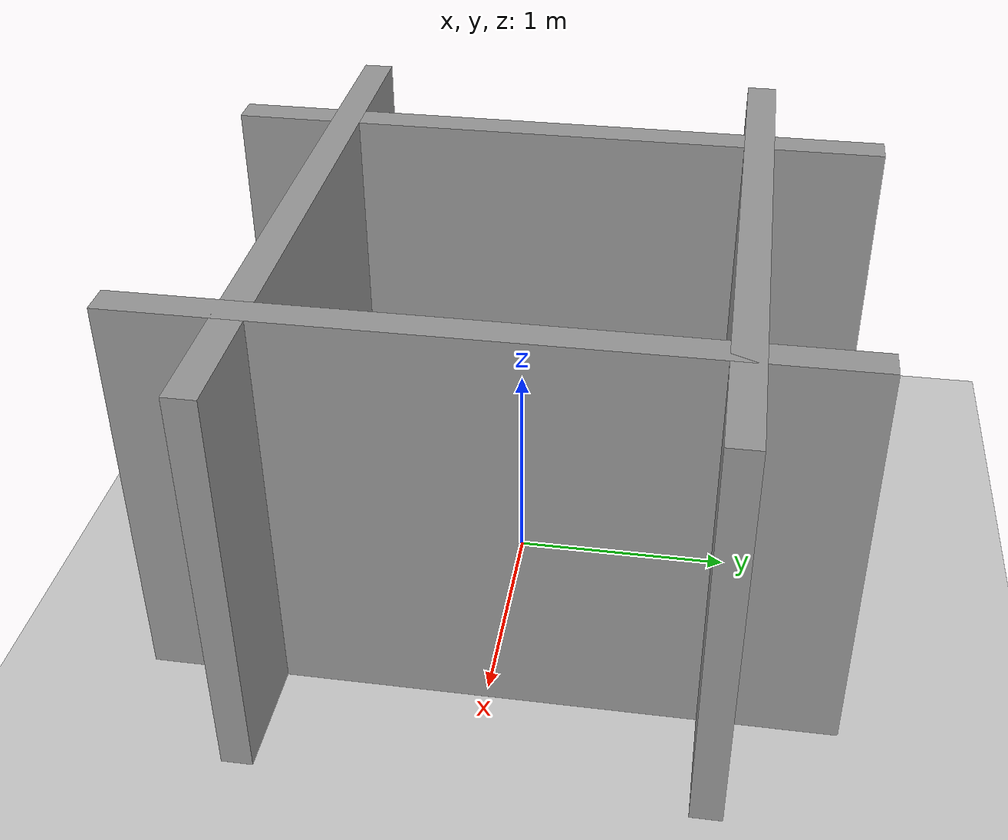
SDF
<sdf version="1.7">
 <world name="default">
  <light name="sun" type="directional">
   <pose>0 0 10 0 -0 0</pose>
   <diffuse>0.8 0.8 0.8 1</diffuse>
   <specular>0.2 0.2 0.2 1</specular>
   <attenuation>
    <range>1000</range>
    <constant>0.9</constant>
    <linear>0.01</linear>
    <quadratic>0.001</quadratic>
   </attenuation>
   <direction>-0.5 0.1 -0.9</direction>
   <spot><inner_angle>0</inner_angle><outer_angle>0</outer_angle><falloff>0</falloff></spot>
  </light>
  <physics name="ode" type="ode">
   <ode>
    <constraints>
     <contact_max_correcting_vel>0</contact_max_correcting_vel>
     <cfm>0</cfm>
     <erp>0.2</erp>
     <contact_surface_layer>0.001</contact_surface_layer>
    </constraints>
    <solver>
     <type>quick</type>
     <iters>50</iters>
     <sor>1.3</sor>
     <use_dynamic_moi_rescaling>0</use_dynamic_moi_rescaling>
    </solver>
   </ode>
   <max_step_size>0.001</max_step_size>
   <real_time_update_rate>1000</real_time_update_rate>
   <real_time_factor>1</real_time_factor>
  </physics>
  <plugin name="stepping_plugin" filename="libstepping_plugin.so"/>
  <model name="moveit_plugin_model">
   <plugin name="gazebo_ros_moveit_planning_scene" filename="libgazebo_ros_moveit_planning_scene.so">
    <robotName>hdt_michigan</robotName>
    <robotNamespace>hdt_michigan</robotNamespace>
    <frameId>hdt_michigan_root</frameId>
   </plugin>
  </model>
  <model name="ground_plane">
   <static>1</static>
   <link name="link">
    <collision name="collision">
     <geometry><plane><normal>0 0 1</normal><size>100 100</size></plane></geometry>
     <surface>
      <contact><collide_bitmask>65535</collide_bitmask></contact>
      <friction><ode><mu>100</mu><mu2>50</mu2></ode></friction>
     </surface>
    </collision>
    <visual name="visual">
     <cast_shadows>0</cast_shadows>
     <geometry><plane><normal>0 0 1</normal><size>100 100</size></plane></geometry>
     <material>
      <script><uri>file://media/materials/scripts/gazebo.material</uri><name>Gazebo/Grey</name></script>
     </material>
    </visual>
   </link>
   <pose>0 0 -0.42 0 -0 0</pose>
  </model>
  <model name="fake_wall1">
   <link name="unit_box::link">
    <inertial>
     <mass>1</mass>
     <inertia>
      <ixx>0.166667</ixx>
      <ixy>0</ixy>
      <ixz>0</ixz>
      <iyy>0.166667</iyy>
      <iyz>0</iyz>
      <izz>0.166667</izz>
     </inertia>
    </inertial>
    <kinematic>1</kinematic>
    <visual name="visual">
     <geometry><box><size>3.10724 0.140567 1.89855</size></box></geometry>
     <material>
      <script><name>Gazebo/Grey</name><uri>file://media/materials/scripts/gazebo.material</uri></script>
      <shader type="pixel"/>
     </material>
    </visual>
    <collision name="collision">
     <geometry><box><size>3.10724 0.140567 1.89855</size></box></geometry>
     <surface>
      <friction>
       <ode><mu>1</mu><mu2>1</mu2><fdir1>0 0 0</fdir1><slip1>0</slip1><slip2>0</slip2></ode>
       <torsional>
        <coefficient>1</coefficient>
        <patch_radius>0</patch_radius>
        <surface_radius>0</surface_radius>
        <use_patch_radius>1</use_patch_radius>
        <ode><slip>0</slip></ode>
       </torsional>
      </friction>
      <bounce><restitution_coefficient>0</restitution_coefficient><threshold>1e+06</threshold></bounce>
      <contact>
       <collide_without_contact>0</collide_without_contact>
       <collide_without_contact_bitmask>1</collide_without_contact_bitmask>
       <collide_bitmask>1</collide_bitmask>
       <ode>
        <soft_cfm>0</soft_cfm>
        <soft_erp>0.2</soft_erp>
        <kp>1e+13</kp>
        <kd>1</kd>
        <max_vel>0.01</max_vel>
        <min_depth>0</min_depth>
       </ode>
       <bullet>
        <split_impulse>1</split_impulse>
        <split_impulse_penetration_threshold>-0.01</split_impulse_penetration_threshold>
        <soft_cfm>0</soft_cfm>
        <soft_erp>0.2</soft_erp>
        <kp>1e+13</kp>
        <kd>1</kd>
       </bullet>
      </contact>
     </surface>
    </collision>
   </link>
   <static>0</static>
   <pose>0 -1 0.9 0 -0 0</pose>
  </model>
  <model name="fake_wall2">
   <link name="unit_box::link">
    <inertial>
     <mass>1</mass>
     <inertia>
      <ixx>0.166667</ixx>
      <ixy>0</ixy>
      <ixz>0</ixz>
      <iyy>0.166667</iyy>
      <iyz>0</iyz>
      <izz>0.166667</izz>
     </inertia>
    </inertial>
    <kinematic>1</kinematic>
    <visual name="visual">
     <geometry><box><size>3.10724 0.140567 1.89855</size></box></geometry>
     <material>
      <script><name>Gazebo/Grey</name><uri>file://media/materials/scripts/gazebo.material</uri></script>
      <shader type="pixel"/>
     </material>
    </visual>
    <collision name="collision">
     <geometry><box><size>3.10724 0.140567 1.89855</size></box></geometry>
     <surface>
      <friction>
       <ode><mu>1</mu><mu2>1</mu2><fdir1>0 0 0</fdir1><slip1>0</slip1><slip2>0</slip2></ode>
       <torsional>
        <coefficient>1</coefficient>
        <patch_radius>0</patch_radius>
        <surface_radius>0</surface_radius>
        <use_patch_radius>1</use_patch_radius>
        <ode><slip>0</slip></ode>
       </torsional>
      </friction>
      <bounce><restitution_coefficient>0</restitution_coefficient><threshold>1e+06</threshold></bounce>
      <contact>
       <collide_without_contact>0</collide_without_contact>
       <collide_without_contact_bitmask>1</collide_without_contact_bitmask>
       <collide_bitmask>1</collide_bitmask>
       <ode>
        <soft_cfm>0</soft_cfm>
        <soft_erp>0.2</soft_erp>
        <kp>1e+13</kp>
        <kd>1</kd>
        <max_vel>0.01</max_vel>
        <min_depth>0</min_depth>
       </ode>
       <bullet>
        <split_impulse>1</split_impulse>
        <split_impulse_penetration_threshold>-0.01</split_impulse_penetration_threshold>
        <soft_cfm>0</soft_cfm>
        <soft_erp>0.2</soft_erp>
        <kp>1e+13</kp>
        <kd>1</kd>
       </bullet>
      </contact>
     </surface>
    </collision>
   </link>
   <static>0</static>
   <pose>0 1 0.9 0 -0 0</pose>
  </model>
  <model name="fake_wall3">
   <link name="unit_box::link">
    <inertial>
     <mass>1</mass>
     <inertia>
      <ixx>0.166667</ixx>
      <ixy>0</ixy>
      <ixz>0</ixz>
      <iyy>0.166667</iyy>
      <iyz>0</iyz>
      <izz>0.166667</izz>
     </inertia>
    </inertial>
    <kinematic>1</kinematic>
    <visual name="visual">
     <geometry><box><size>3.10724 0.140567 1.89855</size></box></geometry>
     <material>
      <script><name>Gazebo/Grey</name><uri>file://media/materials/scripts/gazebo.material</uri></script>
      <shader type="pixel"/>
     </material>
    </visual>
    <collision name="collision">
     <geometry><box><size>3.10724 0.140567 1.89855</size></box></geometry>
     <surface>
      <friction>
       <ode><mu>1</mu><mu2>1</mu2><fdir1>0 0 0</fdir1><slip1>0</slip1><slip2>0</slip2></ode>
       <torsional>
        <coefficient>1</coefficient>
        <patch_radius>0</patch_radius>
        <surface_radius>0</surface_radius>
        <use_patch_radius>1</use_patch_radius>
        <ode><slip>0</slip></ode>
       </torsional>
      </friction>
      <bounce><restitution_coefficient>0</restitution_coefficient><threshold>1e+06</threshold></bounce>
      <contact>
       <collide_without_contact>0</collide_without_contact>
       <collide_without_contact_bitmask>1</collide_without_contact_bitmask>
       <collide_bitmask>1</collide_bitmask>
       <ode>
        <soft_cfm>0</soft_cfm>
        <soft_erp>0.2</soft_erp>
        <kp>1e+13</kp>
        <kd>1</kd>
        <max_vel>0.01</max_vel>
        <min_depth>0</min_depth>
       </ode>
       <bullet>
        <split_impulse>1</split_impulse>
        <split_impulse_penetration_threshold>-0.01</split_impulse_penetration_threshold>
        <soft_cfm>0</soft_cfm>
        <soft_erp>0.2</soft_erp>
        <kp>1e+13</kp>
        <kd>1</kd>
       </bullet>
      </contact>
     </surface>
    </collision>
   </link>
   <static>0</static>
   <pose>-0.905424 0.028835 0.9 0 -0 1.5707</pose>
  </model>
  <model name="fake_wall4">
   <link name="unit_box::link">
    <inertial>
     <mass>1</mass>
     <inertia>
      <ixx>0.166667</ixx>
      <ixy>0</ixy>
      <ixz>0</ixz>
      <iyy>0.166667</iyy>
      <iyz>0</iyz>
      <izz>0.166667</izz>
     </inertia>
    </inertial>
    <kinematic>1</kinematic>
    <visual name="visual">
     <geometry><box><size>3.10724 0.140567 1.89855</size></box></geometry>
     <material>
      <script><name>Gazebo/Grey</name><uri>file://media/materials/scripts/gazebo.material</uri></script>
      <shader type="pixel"/>
     </material>
    </visual>
    <collision name="collision">
     <geometry><box><size>3.10724 0.140567 1.89855</size></box></geometry>
     <surface>
      <friction>
       <ode><mu>1</mu><mu2>1</mu2><fdir1>0 0 0</fdir1><slip1>0</slip1><slip2>0</slip2></ode>
       <torsional>
        <coefficient>1</coefficient>
        <patch_radius>0</patch_radius>
        <surface_radius>0</surface_radius>
        <use_patch_radius>1</use_patch_radius>
        <ode><slip>0</slip></ode>
       </torsional>
      </friction>
      <bounce><restitution_coefficient>0</restitution_coefficient><threshold>1e+06</threshold></bounce>
      <contact>
       <collide_without_contact>0</collide_without_contact>
       <collide_without_contact_bitmask>1</collide_without_contact_bitmask>
       <collide_bitmask>1</collide_bitmask>
       <ode>
        <soft_cfm>0</soft_cfm>
        <soft_erp>0.2</soft_erp>
        <kp>1e+13</kp>
        <kd>1</kd>
        <max_vel>0.01</max_vel>
        <min_depth>0</min_depth>
       </ode>
       <bullet>
        <split_impulse>1</split_impulse>
        <split_impulse_penetration_threshold>-0.01</split_impulse_penetration_threshold>
        <soft_cfm>0</soft_cfm>
        <soft_erp>0.2</soft_erp>
        <kp>1e+13</kp>
        <kd>1</kd>
       </bullet>
      </contact>
     </surface>
    </collision>
   </link>
   <static>0</static>
   <pose>0.941282 -0.007304 0.9 0 -0 1.5707</pose>
  </model>
  <gravity>0 0 -9.8</gravity>
  <magnetic_field>6e-06 2.3e-05 -4.2e-05</magnetic_field>
  <atmosphere type="adiabatic"/>
  <scene><ambient>0.4 0.4 0.4 1</ambient><background>0.7 0.7 0.7 1</background><shadows>1</shadows></scene>
  <spherical_coordinates>
   <surface_model>EARTH_WGS84</surface_model>
   <latitude_deg>0</latitude_deg>
   <longitude_deg>0</longitude_deg>
   <elevation>0</elevation>
   <heading_deg>0</heading_deg>
  </spherical_coordinates>
 </world>
</sdf>
